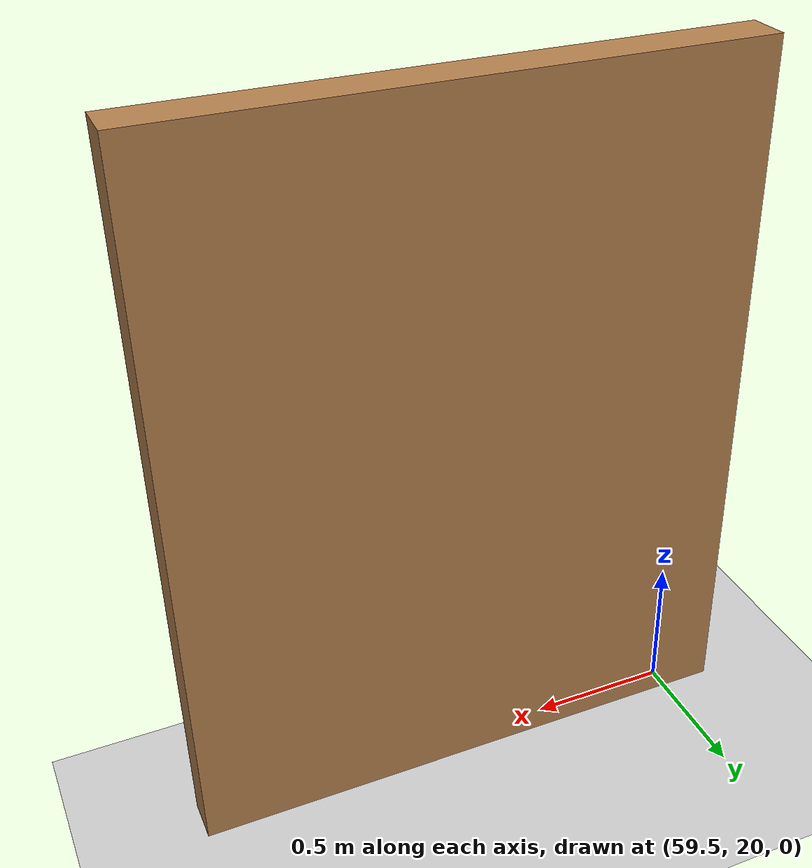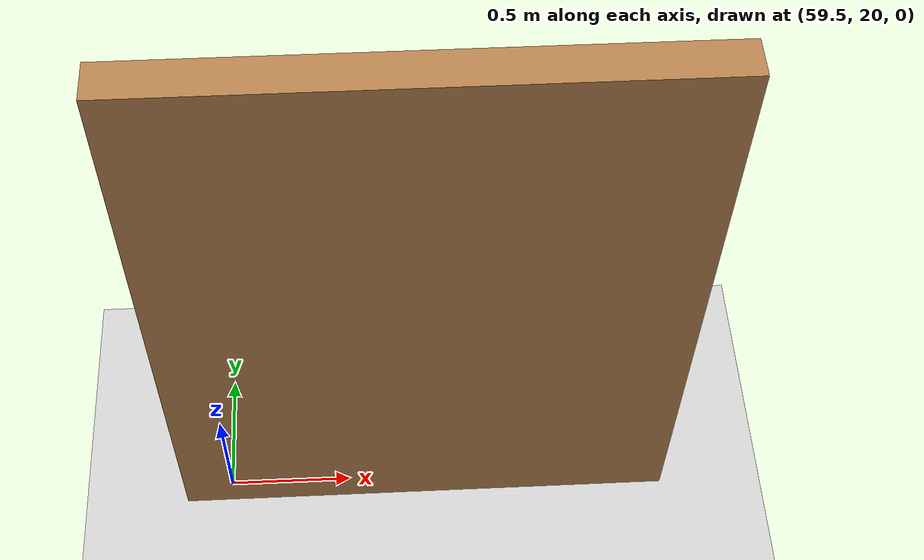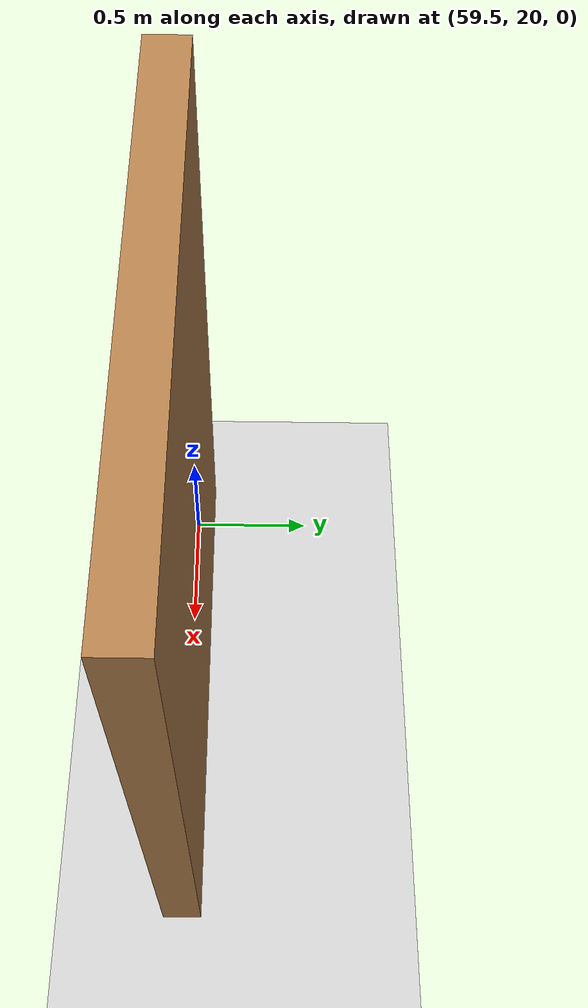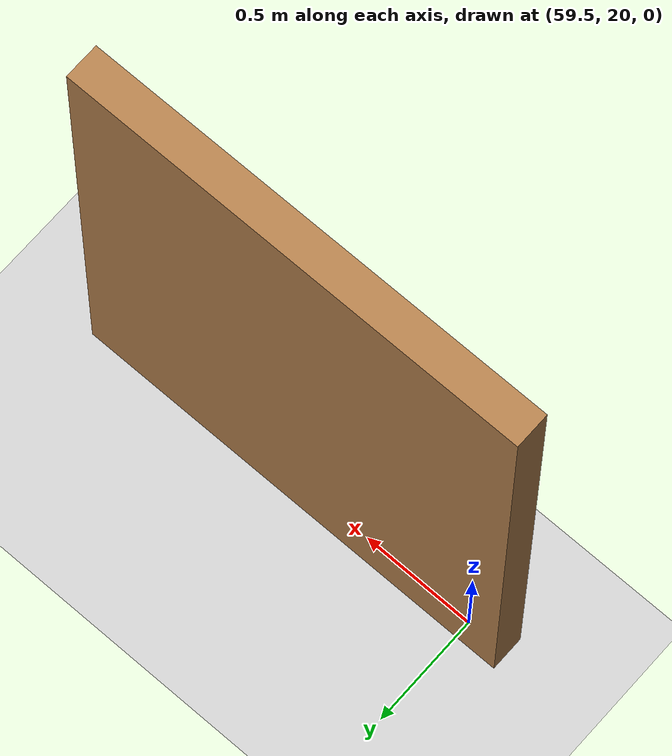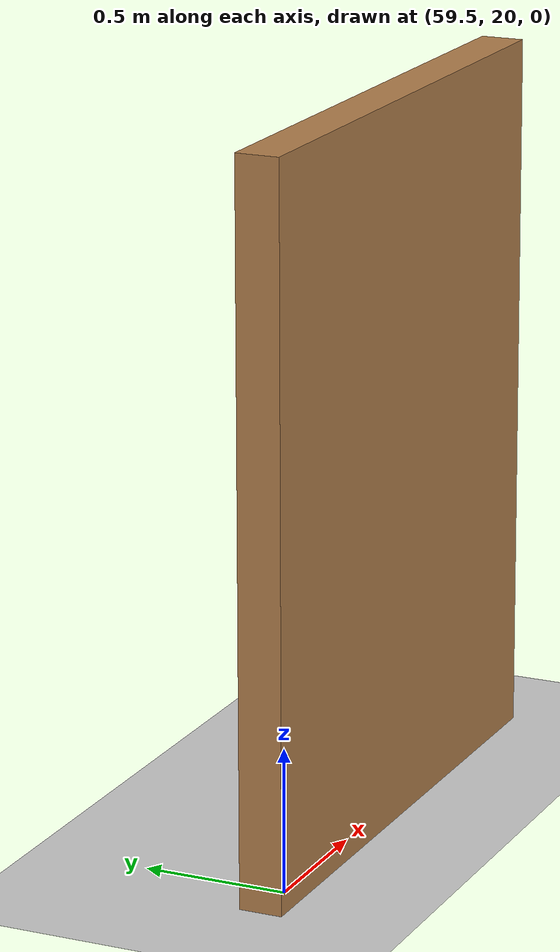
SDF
<sdf version="1.6">
 <world name="default">
  <model name="ground_plane">
   <static>1</static>
   <link name="link">
    <collision name="collision">
     <geometry><plane><normal>0 0 1</normal><size>100 100</size></plane></geometry>
     <surface><friction><ode><mu>100</mu><mu2>50</mu2></ode></friction></surface>
    </collision>
    <visual name="visual">
     <cast_shadows>0</cast_shadows>
     <geometry><plane><normal>0 0 1</normal><size>100 100</size></plane></geometry>
     <material>
      <script><uri>file://media/materials/scripts/gazebo.material</uri><name>Gazebo/Grey</name></script>
     </material>
    </visual>
   </link>
  </model>
  <model name="tr_maze_lay_1_3">
   <pose>60.3145 19.9991 0 0 -0 0</pose>
   <link name="Wall_21">
    <collision name="Wall_21_Collision">
     <geometry><box><size>2 0.15 2.5</size></box></geometry>
     <pose>0 0 1.25 0 -0 0</pose>
    </collision>
    <visual name="Wall_21_Visual">
     <pose>0 0 1.25 0 -0 0</pose>
     <geometry><box><size>2 0.15 2.5</size></box></geometry>
     <material>
      <script><uri>file://media/materials/scripts/gazebo.material</uri><name>Gazebo/Wood</name></script>
      <ambient>1 1 1 1</ambient>
     </material>
    </visual>
    <pose>0 0 0 0 -0 3.14159</pose>
   </link>
   <static>1</static>
  </model>
 </world>
</sdf>
